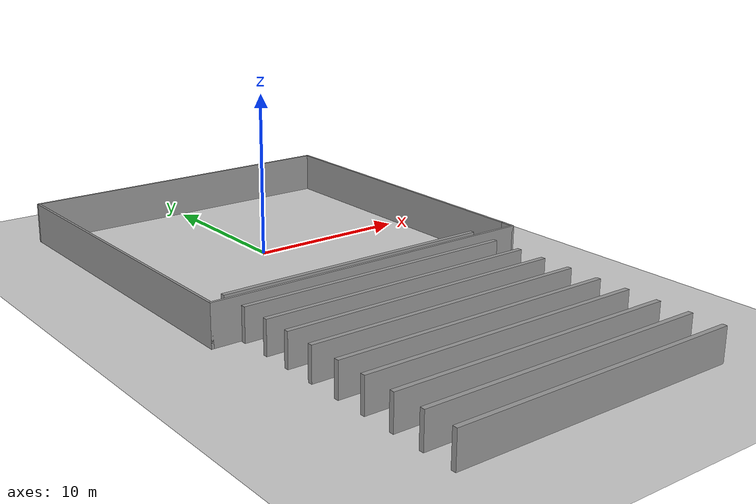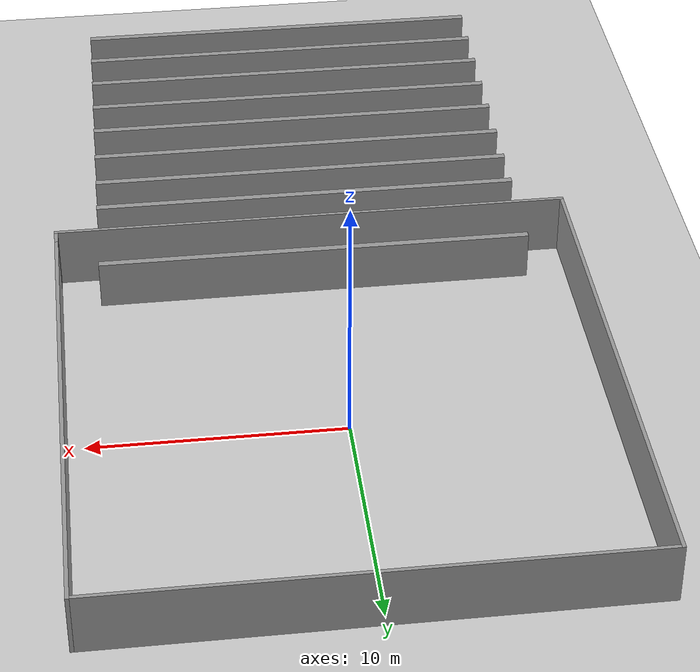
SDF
<sdf version="1.7">
 <world name="default">
  <light name="sun" type="directional">
   <pose>0 0 10 0 -0 0</pose>
   <diffuse>0.8 0.8 0.8 1</diffuse>
   <specular>0.2 0.2 0.2 1</specular>
   <attenuation>
    <range>1000</range>
    <constant>0.9</constant>
    <linear>0.01</linear>
    <quadratic>0.001</quadratic>
   </attenuation>
   <direction>-0.5 0.1 -0.9</direction>
   <spot><inner_angle>0</inner_angle><outer_angle>0</outer_angle><falloff>0</falloff></spot>
  </light>
  <model name="ground_plane">
   <static>1</static>
   <link name="link">
    <collision name="collision">
     <geometry><plane><normal>0 0 1</normal><size>100 100</size></plane></geometry>
     <surface><friction><ode><mu>100</mu><mu2>50</mu2></ode></friction></surface>
    </collision>
    <visual name="visual">
     <cast_shadows>0</cast_shadows>
     <geometry><plane><normal>0 0 1</normal><size>100 100</size></plane></geometry>
     <material>
      <script><uri>file://media/materials/scripts/gazebo.material</uri><name>Gazebo/Grey</name></script>
     </material>
    </visual>
   </link>
  </model>
  <gravity>0 0 -9.8</gravity>
  <magnetic_field>6e-06 2.3e-05 -4.2e-05</magnetic_field>
  <atmosphere type="adiabatic"/>
  <physics type="ode">
   <max_step_size>0.001</max_step_size>
   <real_time_factor>1</real_time_factor>
   <real_time_update_rate>1000</real_time_update_rate>
  </physics>
  <scene><ambient>0.4 0.4 0.4 1</ambient><background>0.7 0.7 0.7 1</background><shadows>1</shadows></scene>
  <spherical_coordinates>
   <surface_model>EARTH_WGS84</surface_model>
   <latitude_deg>0</latitude_deg>
   <longitude_deg>0</longitude_deg>
   <elevation>0</elevation>
   <heading_deg>0</heading_deg>
  </spherical_coordinates>
  <model name="plantaTermica">
   <link name="Wall_0_clone_clone">
    <pose>44.3326 37.2873 0 0 0 -1.5701</pose>
    <inertial>
     <inertia><ixx>0</ixx><ixy>0</ixy><ixz>0</ixz><iyy>0</iyy><iyz>0</iyz><izz>0</izz></inertia>
     <mass>0</mass>
    </inertial>
    <visual name="Wall_0_Visual">
     <pose>0 0 1 0 -0 0</pose>
     <geometry><box><size>0.28982 17.5231 2.00001</size></box></geometry>
     <material>
      <script><uri>file://media/materials/scripts/gazebo.material</uri><name>Gazebo/Grey</name></script>
      <ambient>1 1 1 1</ambient>
      <shader type="pixel"/>
     </material>
     <meta><layer>0</layer></meta>
    </visual>
    <collision name="Wall_0_Collision">
     <pose>0 0 1 0 -0 0</pose>
     <geometry><box><size>0.28982 17.5231 2.00001</size></box></geometry>
     <surface>
      <friction>
       <ode><mu>1</mu><mu2>1</mu2><fdir1>0 0 0</fdir1><slip1>0</slip1><slip2>0</slip2></ode>
       <torsional>
        <coefficient>1</coefficient>
        <patch_radius>0</patch_radius>
        <surface_radius>0</surface_radius>
        <use_patch_radius>1</use_patch_radius>
        <ode><slip>0</slip></ode>
       </torsional>
      </friction>
      <bounce><restitution_coefficient>0</restitution_coefficient><threshold>1e+06</threshold></bounce>
      <contact>
       <collide_without_contact>0</collide_without_contact>
       <collide_without_contact_bitmask>1</collide_without_contact_bitmask>
       <collide_bitmask>1</collide_bitmask>
       <ode>
        <soft_cfm>0</soft_cfm>
        <soft_erp>0.2</soft_erp>
        <kp>1e+13</kp>
        <kd>1</kd>
        <max_vel>0.01</max_vel>
        <min_depth>0</min_depth>
       </ode>
       <bullet>
        <split_impulse>1</split_impulse>
        <split_impulse_penetration_threshold>-0.01</split_impulse_penetration_threshold>
        <soft_cfm>0</soft_cfm>
        <soft_erp>0.2</soft_erp>
        <kp>1e+13</kp>
        <kd>1</kd>
       </bullet>
      </contact>
     </surface>
    </collision>
   </link>
   <link name="Wall_0_clone_clone_clone_0">
    <pose>44.134 19.3309 0 0 0 -1.5701</pose>
    <inertial>
     <inertia><ixx>0</ixx><ixy>0</ixy><ixz>0</ixz><iyy>0</iyy><iyz>0</iyz><izz>0</izz></inertia>
     <mass>0</mass>
    </inertial>
    <visual name="Wall_0_Visual">
     <pose>0 0 1 0 -0 0</pose>
     <geometry><box><size>0.28982 17.5231 2.00001</size></box></geometry>
     <material>
      <script><uri>file://media/materials/scripts/gazebo.material</uri><name>Gazebo/Grey</name></script>
      <ambient>1 1 1 1</ambient>
      <shader type="pixel"/>
     </material>
     <meta><layer>0</layer></meta>
    </visual>
    <collision name="Wall_0_Collision">
     <pose>0 0 1 0 -0 0</pose>
     <geometry><box><size>0.28982 17.5231 2.00001</size></box></geometry>
     <surface>
      <friction>
       <ode><mu>1</mu><mu2>1</mu2><fdir1>0 0 0</fdir1><slip1>0</slip1><slip2>0</slip2></ode>
       <torsional>
        <coefficient>1</coefficient>
        <patch_radius>0</patch_radius>
        <surface_radius>0</surface_radius>
        <use_patch_radius>1</use_patch_radius>
        <ode><slip>0</slip></ode>
       </torsional>
      </friction>
      <bounce><restitution_coefficient>0</restitution_coefficient><threshold>1e+06</threshold></bounce>
      <contact>
       <collide_without_contact>0</collide_without_contact>
       <collide_without_contact_bitmask>1</collide_without_contact_bitmask>
       <collide_bitmask>1</collide_bitmask>
       <ode>
        <soft_cfm>0</soft_cfm>
        <soft_erp>0.2</soft_erp>
        <kp>1e+13</kp>
        <kd>1</kd>
        <max_vel>0.01</max_vel>
        <min_depth>0</min_depth>
       </ode>
       <bullet>
        <split_impulse>1</split_impulse>
        <split_impulse_penetration_threshold>-0.01</split_impulse_penetration_threshold>
        <soft_cfm>0</soft_cfm>
        <soft_erp>0.2</soft_erp>
        <kp>1e+13</kp>
        <kd>1</kd>
       </bullet>
      </contact>
     </surface>
    </collision>
   </link>
   <link name="Wall_0_clone_clone_clone_1">
    <pose>44.1561 21.3337 0 0 0 -1.5701</pose>
    <inertial>
     <inertia><ixx>0</ixx><ixy>0</ixy><ixz>0</ixz><iyy>0</iyy><iyz>0</iyz><izz>0</izz></inertia>
     <mass>0</mass>
    </inertial>
    <visual name="Wall_0_Visual">
     <pose>0 0 1 0 -0 0</pose>
     <geometry><box><size>0.28982 17.5231 2.00001</size></box></geometry>
     <material>
      <script><uri>file://media/materials/scripts/gazebo.material</uri><name>Gazebo/Grey</name></script>
      <ambient>1 1 1 1</ambient>
      <shader type="pixel"/>
     </material>
     <meta><layer>0</layer></meta>
    </visual>
    <collision name="Wall_0_Collision">
     <pose>0 0 1 0 -0 0</pose>
     <geometry><box><size>0.28982 17.5231 2.00001</size></box></geometry>
     <surface>
      <friction>
       <ode><mu>1</mu><mu2>1</mu2><fdir1>0 0 0</fdir1><slip1>0</slip1><slip2>0</slip2></ode>
       <torsional>
        <coefficient>1</coefficient>
        <patch_radius>0</patch_radius>
        <surface_radius>0</surface_radius>
        <use_patch_radius>1</use_patch_radius>
        <ode><slip>0</slip></ode>
       </torsional>
      </friction>
      <bounce><restitution_coefficient>0</restitution_coefficient><threshold>1e+06</threshold></bounce>
      <contact>
       <collide_without_contact>0</collide_without_contact>
       <collide_without_contact_bitmask>1</collide_without_contact_bitmask>
       <collide_bitmask>1</collide_bitmask>
       <ode>
        <soft_cfm>0</soft_cfm>
        <soft_erp>0.2</soft_erp>
        <kp>1e+13</kp>
        <kd>1</kd>
        <max_vel>0.01</max_vel>
        <min_depth>0</min_depth>
       </ode>
       <bullet>
        <split_impulse>1</split_impulse>
        <split_impulse_penetration_threshold>-0.01</split_impulse_penetration_threshold>
        <soft_cfm>0</soft_cfm>
        <soft_erp>0.2</soft_erp>
        <kp>1e+13</kp>
        <kd>1</kd>
       </bullet>
      </contact>
     </surface>
    </collision>
   </link>
   <link name="Wall_0_clone_clone_clone_2">
    <pose>44.1782 23.3261 0 0 0 -1.5701</pose>
    <inertial>
     <inertia><ixx>0</ixx><ixy>0</ixy><ixz>0</ixz><iyy>0</iyy><iyz>0</iyz><izz>0</izz></inertia>
     <mass>0</mass>
    </inertial>
    <visual name="Wall_0_Visual">
     <pose>0 0 1 0 -0 0</pose>
     <geometry><box><size>0.28982 17.5231 2.00001</size></box></geometry>
     <material>
      <script><uri>file://media/materials/scripts/gazebo.material</uri><name>Gazebo/Grey</name></script>
      <ambient>1 1 1 1</ambient>
      <shader type="pixel"/>
     </material>
     <meta><layer>0</layer></meta>
    </visual>
    <collision name="Wall_0_Collision">
     <pose>0 0 1 0 -0 0</pose>
     <geometry><box><size>0.28982 17.5231 2.00001</size></box></geometry>
     <surface>
      <friction>
       <ode><mu>1</mu><mu2>1</mu2><fdir1>0 0 0</fdir1><slip1>0</slip1><slip2>0</slip2></ode>
       <torsional>
        <coefficient>1</coefficient>
        <patch_radius>0</patch_radius>
        <surface_radius>0</surface_radius>
        <use_patch_radius>1</use_patch_radius>
        <ode><slip>0</slip></ode>
       </torsional>
      </friction>
      <bounce><restitution_coefficient>0</restitution_coefficient><threshold>1e+06</threshold></bounce>
      <contact>
       <collide_without_contact>0</collide_without_contact>
       <collide_without_contact_bitmask>1</collide_without_contact_bitmask>
       <collide_bitmask>1</collide_bitmask>
       <ode>
        <soft_cfm>0</soft_cfm>
        <soft_erp>0.2</soft_erp>
        <kp>1e+13</kp>
        <kd>1</kd>
        <max_vel>0.01</max_vel>
        <min_depth>0</min_depth>
       </ode>
       <bullet>
        <split_impulse>1</split_impulse>
        <split_impulse_penetration_threshold>-0.01</split_impulse_penetration_threshold>
        <soft_cfm>0</soft_cfm>
        <soft_erp>0.2</soft_erp>
        <kp>1e+13</kp>
        <kd>1</kd>
       </bullet>
      </contact>
     </surface>
    </collision>
   </link>
   <link name="Wall_0_clone_clone_clone_3">
    <pose>44.2007 25.3651 0 0 0 -1.5701</pose>
    <inertial>
     <inertia><ixx>0</ixx><ixy>0</ixy><ixz>0</ixz><iyy>0</iyy><iyz>0</iyz><izz>0</izz></inertia>
     <mass>0</mass>
    </inertial>
    <visual name="Wall_0_Visual">
     <pose>0 0 1 0 -0 0</pose>
     <geometry><box><size>0.28982 17.5231 2.00001</size></box></geometry>
     <material>
      <script><uri>file://media/materials/scripts/gazebo.material</uri><name>Gazebo/Grey</name></script>
      <ambient>1 1 1 1</ambient>
      <shader type="pixel"/>
     </material>
     <meta><layer>0</layer></meta>
    </visual>
    <collision name="Wall_0_Collision">
     <pose>0 0 1 0 -0 0</pose>
     <geometry><box><size>0.28982 17.5231 2.00001</size></box></geometry>
     <surface>
      <friction>
       <ode><mu>1</mu><mu2>1</mu2><fdir1>0 0 0</fdir1><slip1>0</slip1><slip2>0</slip2></ode>
       <torsional>
        <coefficient>1</coefficient>
        <patch_radius>0</patch_radius>
        <surface_radius>0</surface_radius>
        <use_patch_radius>1</use_patch_radius>
        <ode><slip>0</slip></ode>
       </torsional>
      </friction>
      <bounce><restitution_coefficient>0</restitution_coefficient><threshold>1e+06</threshold></bounce>
      <contact>
       <collide_without_contact>0</collide_without_contact>
       <collide_without_contact_bitmask>1</collide_without_contact_bitmask>
       <collide_bitmask>1</collide_bitmask>
       <ode>
        <soft_cfm>0</soft_cfm>
        <soft_erp>0.2</soft_erp>
        <kp>1e+13</kp>
        <kd>1</kd>
        <max_vel>0.01</max_vel>
        <min_depth>0</min_depth>
       </ode>
       <bullet>
        <split_impulse>1</split_impulse>
        <split_impulse_penetration_threshold>-0.01</split_impulse_penetration_threshold>
        <soft_cfm>0</soft_cfm>
        <soft_erp>0.2</soft_erp>
        <kp>1e+13</kp>
        <kd>1</kd>
       </bullet>
      </contact>
     </surface>
    </collision>
   </link>
   <link name="Wall_0_clone_clone_clone_4">
    <pose>44.2223 27.3195 0 0 0 -1.5701</pose>
    <inertial>
     <inertia><ixx>0</ixx><ixy>0</ixy><ixz>0</ixz><iyy>0</iyy><iyz>0</iyz><izz>0</izz></inertia>
     <mass>0</mass>
    </inertial>
    <visual name="Wall_0_Visual">
     <pose>0 0 1 0 -0 0</pose>
     <geometry><box><size>0.28982 17.5231 2.00001</size></box></geometry>
     <material>
      <script><uri>file://media/materials/scripts/gazebo.material</uri><name>Gazebo/Grey</name></script>
      <ambient>1 1 1 1</ambient>
      <shader type="pixel"/>
     </material>
     <meta><layer>0</layer></meta>
    </visual>
    <collision name="Wall_0_Collision">
     <pose>0 0 1 0 -0 0</pose>
     <geometry><box><size>0.28982 17.5231 2.00001</size></box></geometry>
     <surface>
      <friction>
       <ode><mu>1</mu><mu2>1</mu2><fdir1>0 0 0</fdir1><slip1>0</slip1><slip2>0</slip2></ode>
       <torsional>
        <coefficient>1</coefficient>
        <patch_radius>0</patch_radius>
        <surface_radius>0</surface_radius>
        <use_patch_radius>1</use_patch_radius>
        <ode><slip>0</slip></ode>
       </torsional>
      </friction>
      <bounce><restitution_coefficient>0</restitution_coefficient><threshold>1e+06</threshold></bounce>
      <contact>
       <collide_without_contact>0</collide_without_contact>
       <collide_without_contact_bitmask>1</collide_without_contact_bitmask>
       <collide_bitmask>1</collide_bitmask>
       <ode>
        <soft_cfm>0</soft_cfm>
        <soft_erp>0.2</soft_erp>
        <kp>1e+13</kp>
        <kd>1</kd>
        <max_vel>0.01</max_vel>
        <min_depth>0</min_depth>
       </ode>
       <bullet>
        <split_impulse>1</split_impulse>
        <split_impulse_penetration_threshold>-0.01</split_impulse_penetration_threshold>
        <soft_cfm>0</soft_cfm>
        <soft_erp>0.2</soft_erp>
        <kp>1e+13</kp>
        <kd>1</kd>
       </bullet>
      </contact>
     </surface>
    </collision>
   </link>
   <link name="Wall_0_clone_clone_clone_5">
    <pose>44.2454 29.4054 0 0 0 -1.5701</pose>
    <inertial>
     <inertia><ixx>0</ixx><ixy>0</ixy><ixz>0</ixz><iyy>0</iyy><iyz>0</iyz><izz>0</izz></inertia>
     <mass>0</mass>
    </inertial>
    <visual name="Wall_0_Visual">
     <pose>0 0 1 0 -0 0</pose>
     <geometry><box><size>0.28982 17.5231 2.00001</size></box></geometry>
     <material>
      <script><uri>file://media/materials/scripts/gazebo.material</uri><name>Gazebo/Grey</name></script>
      <ambient>1 1 1 1</ambient>
      <shader type="pixel"/>
     </material>
     <meta><layer>0</layer></meta>
    </visual>
    <collision name="Wall_0_Collision">
     <pose>0 0 1 0 -0 0</pose>
     <geometry><box><size>0.28982 17.5231 2.00001</size></box></geometry>
     <surface>
      <friction>
       <ode><mu>1</mu><mu2>1</mu2><fdir1>0 0 0</fdir1><slip1>0</slip1><slip2>0</slip2></ode>
       <torsional>
        <coefficient>1</coefficient>
        <patch_radius>0</patch_radius>
        <surface_radius>0</surface_radius>
        <use_patch_radius>1</use_patch_radius>
        <ode><slip>0</slip></ode>
       </torsional>
      </friction>
      <bounce><restitution_coefficient>0</restitution_coefficient><threshold>1e+06</threshold></bounce>
      <contact>
       <collide_without_contact>0</collide_without_contact>
       <collide_without_contact_bitmask>1</collide_without_contact_bitmask>
       <collide_bitmask>1</collide_bitmask>
       <ode>
        <soft_cfm>0</soft_cfm>
        <soft_erp>0.2</soft_erp>
        <kp>1e+13</kp>
        <kd>1</kd>
        <max_vel>0.01</max_vel>
        <min_depth>0</min_depth>
       </ode>
       <bullet>
        <split_impulse>1</split_impulse>
        <split_impulse_penetration_threshold>-0.01</split_impulse_penetration_threshold>
        <soft_cfm>0</soft_cfm>
        <soft_erp>0.2</soft_erp>
        <kp>1e+13</kp>
        <kd>1</kd>
       </bullet>
      </contact>
     </surface>
    </collision>
   </link>
   <link name="Wall_0_clone_clone_clone_6">
    <pose>44.2675 31.4009 0 0 0 -1.5701</pose>
    <inertial>
     <inertia><ixx>0</ixx><ixy>0</ixy><ixz>0</ixz><iyy>0</iyy><iyz>0</iyz><izz>0</izz></inertia>
     <mass>0</mass>
    </inertial>
    <visual name="Wall_0_Visual">
     <pose>0 0 1 0 -0 0</pose>
     <geometry><box><size>0.28982 17.5231 2.00001</size></box></geometry>
     <material>
      <script><uri>file://media/materials/scripts/gazebo.material</uri><name>Gazebo/Grey</name></script>
      <ambient>1 1 1 1</ambient>
      <shader type="pixel"/>
     </material>
     <meta><layer>0</layer></meta>
    </visual>
    <collision name="Wall_0_Collision">
     <pose>0 0 1 0 -0 0</pose>
     <geometry><box><size>0.28982 17.5231 2.00001</size></box></geometry>
     <surface>
      <friction>
       <ode><mu>1</mu><mu2>1</mu2><fdir1>0 0 0</fdir1><slip1>0</slip1><slip2>0</slip2></ode>
       <torsional>
        <coefficient>1</coefficient>
        <patch_radius>0</patch_radius>
        <surface_radius>0</surface_radius>
        <use_patch_radius>1</use_patch_radius>
        <ode><slip>0</slip></ode>
       </torsional>
      </friction>
      <bounce><restitution_coefficient>0</restitution_coefficient><threshold>1e+06</threshold></bounce>
      <contact>
       <collide_without_contact>0</collide_without_contact>
       <collide_without_contact_bitmask>1</collide_without_contact_bitmask>
       <collide_bitmask>1</collide_bitmask>
       <ode>
        <soft_cfm>0</soft_cfm>
        <soft_erp>0.2</soft_erp>
        <kp>1e+13</kp>
        <kd>1</kd>
        <max_vel>0.01</max_vel>
        <min_depth>0</min_depth>
       </ode>
       <bullet>
        <split_impulse>1</split_impulse>
        <split_impulse_penetration_threshold>-0.01</split_impulse_penetration_threshold>
        <soft_cfm>0</soft_cfm>
        <soft_erp>0.2</soft_erp>
        <kp>1e+13</kp>
        <kd>1</kd>
       </bullet>
      </contact>
     </surface>
    </collision>
   </link>
   <link name="Wall_0_clone_clone_clone_7">
    <pose>44.2881 33.2679 0 0 0 -1.5701</pose>
    <inertial>
     <inertia><ixx>0</ixx><ixy>0</ixy><ixz>0</ixz><iyy>0</iyy><iyz>0</iyz><izz>0</izz></inertia>
     <mass>0</mass>
    </inertial>
    <visual name="Wall_0_Visual">
     <pose>0 0 1 0 -0 0</pose>
     <geometry><box><size>0.28982 17.5231 2.00001</size></box></geometry>
     <material>
      <script><uri>file://media/materials/scripts/gazebo.material</uri><name>Gazebo/Grey</name></script>
      <ambient>1 1 1 1</ambient>
      <shader type="pixel"/>
     </material>
     <meta><layer>0</layer></meta>
    </visual>
    <collision name="Wall_0_Collision">
     <pose>0 0 1 0 -0 0</pose>
     <geometry><box><size>0.28982 17.5231 2.00001</size></box></geometry>
     <surface>
      <friction>
       <ode><mu>1</mu><mu2>1</mu2><fdir1>0 0 0</fdir1><slip1>0</slip1><slip2>0</slip2></ode>
       <torsional>
        <coefficient>1</coefficient>
        <patch_radius>0</patch_radius>
        <surface_radius>0</surface_radius>
        <use_patch_radius>1</use_patch_radius>
        <ode><slip>0</slip></ode>
       </torsional>
      </friction>
      <bounce><restitution_coefficient>0</restitution_coefficient><threshold>1e+06</threshold></bounce>
      <contact>
       <collide_without_contact>0</collide_without_contact>
       <collide_without_contact_bitmask>1</collide_without_contact_bitmask>
       <collide_bitmask>1</collide_bitmask>
       <ode>
        <soft_cfm>0</soft_cfm>
        <soft_erp>0.2</soft_erp>
        <kp>1e+13</kp>
        <kd>1</kd>
        <max_vel>0.01</max_vel>
        <min_depth>0</min_depth>
       </ode>
       <bullet>
        <split_impulse>1</split_impulse>
        <split_impulse_penetration_threshold>-0.01</split_impulse_penetration_threshold>
        <soft_cfm>0</soft_cfm>
        <soft_erp>0.2</soft_erp>
        <kp>1e+13</kp>
        <kd>1</kd>
       </bullet>
      </contact>
     </surface>
    </collision>
   </link>
   <link name="Wall_0_clone_clone_clone_8">
    <pose>44.3104 35.2837 0 0 0 -1.5701</pose>
    <inertial>
     <inertia><ixx>0</ixx><ixy>0</ixy><ixz>0</ixz><iyy>0</iyy><iyz>0</iyz><izz>0</izz></inertia>
     <mass>0</mass>
    </inertial>
    <visual name="Wall_0_Visual">
     <pose>0 0 1 0 -0 0</pose>
     <geometry><box><size>0.28982 17.5231 2.00001</size></box></geometry>
     <material>
      <script><uri>file://media/materials/scripts/gazebo.material</uri><name>Gazebo/Grey</name></script>
      <ambient>1 1 1 1</ambient>
      <shader type="pixel"/>
     </material>
     <meta><layer>0</layer></meta>
    </visual>
    <collision name="Wall_0_Collision">
     <pose>0 0 1 0 -0 0</pose>
     <geometry><box><size>0.28982 17.5231 2.00001</size></box></geometry>
     <surface>
      <friction>
       <ode><mu>1</mu><mu2>1</mu2><fdir1>0 0 0</fdir1><slip1>0</slip1><slip2>0</slip2></ode>
       <torsional>
        <coefficient>1</coefficient>
        <patch_radius>0</patch_radius>
        <surface_radius>0</surface_radius>
        <use_patch_radius>1</use_patch_radius>
        <ode><slip>0</slip></ode>
       </torsional>
      </friction>
      <bounce><restitution_coefficient>0</restitution_coefficient><threshold>1e+06</threshold></bounce>
      <contact>
       <collide_without_contact>0</collide_without_contact>
       <collide_without_contact_bitmask>1</collide_without_contact_bitmask>
       <collide_bitmask>1</collide_bitmask>
       <ode>
        <soft_cfm>0</soft_cfm>
        <soft_erp>0.2</soft_erp>
        <kp>1e+13</kp>
        <kd>1</kd>
        <max_vel>0.01</max_vel>
        <min_depth>0</min_depth>
       </ode>
       <bullet>
        <split_impulse>1</split_impulse>
        <split_impulse_penetration_threshold>-0.01</split_impulse_penetration_threshold>
        <soft_cfm>0</soft_cfm>
        <soft_erp>0.2</soft_erp>
        <kp>1e+13</kp>
        <kd>1</kd>
       </bullet>
      </contact>
     </surface>
    </collision>
   </link>
   <static>1</static>
   <pose>-44.0229 -46.3025 0 0 -0 0</pose>
  </model>
  <model name="Untitled">
   <pose>0.278452 -0.15727 0 0 -0 0</pose>
   <link name="Wall_14">
    <collision name="Wall_14_Collision">
     <geometry><box><size>20.5 0.15 2.5</size></box></geometry>
     <pose>0 0 1.25 0 -0 0</pose>
    </collision>
    <visual name="Wall_14_Visual">
     <pose>0 0 1.25 0 -0 0</pose>
     <geometry><box><size>20.5 0.15 2.5</size></box></geometry>
     <material>
      <script><uri>file://media/materials/scripts/gazebo.material</uri><name>Gazebo/Grey</name></script>
      <ambient>1 1 1 1</ambient>
     </material>
     <meta><layer>0</layer></meta>
    </visual>
    <pose>10.425 0.375 0 0 -0 1.5708</pose>
   </link>
   <link name="Wall_15">
    <collision name="Wall_15_Collision">
     <geometry><box><size>21 0.15 2.5</size></box></geometry>
     <pose>0 0 1.25 0 -0 0</pose>
    </collision>
    <visual name="Wall_15_Visual">
     <pose>0 0 1.25 0 -0 0</pose>
     <geometry><box><size>21 0.15 2.5</size></box></geometry>
     <material>
      <script><uri>file://media/materials/scripts/gazebo.material</uri><name>Gazebo/Grey</name></script>
      <ambient>1 1 1 1</ambient>
     </material>
     <meta><layer>0</layer></meta>
    </visual>
    <pose>0 10.55 0 0 -0 3.14159</pose>
   </link>
   <link name="Wall_16">
    <collision name="Wall_16_Collision">
     <geometry><box><size>21.25 0.15 2.5</size></box></geometry>
     <pose>0 0 1.25 0 -0 0</pose>
    </collision>
    <visual name="Wall_16_Visual">
     <pose>0 0 1.25 0 -0 0</pose>
     <geometry><box><size>21.25 0.15 2.5</size></box></geometry>
     <material>
      <script><uri>file://media/materials/scripts/gazebo.material</uri><name>Gazebo/Grey</name></script>
      <ambient>1 1 1 1</ambient>
     </material>
     <meta><layer>0</layer></meta>
    </visual>
    <pose>-10.425 -0 0 0 -0 -1.5708</pose>
   </link>
   <link name="Wall_17">
    <collision name="Wall_17_Collision">
     <geometry><box><size>21 0.15 2.5</size></box></geometry>
     <pose>0 0 1.25 0 -0 0</pose>
    </collision>
    <visual name="Wall_17_Visual">
     <pose>0 0 1.25 0 -0 0</pose>
     <geometry><box><size>21 0.15 2.5</size></box></geometry>
     <material>
      <script><uri>file://media/materials/scripts/gazebo.material</uri><name>Gazebo/Grey</name></script>
      <ambient>1 1 1 1</ambient>
     </material>
     <meta><layer>0</layer></meta>
    </visual>
    <pose>0 -10.55 0 0 -0 0</pose>
   </link>
   <link name="Wall_18">
    <collision name="Wall_18_Collision">
     <geometry><box><size>0.9 0.15 2.5</size></box></geometry>
     <pose>0 0 1.25 0 -0 0</pose>
    </collision>
    <visual name="Wall_18_Visual">
     <pose>0 0 1.25 0 -0 0</pose>
     <geometry><box><size>0.9 0.15 2.5</size></box></geometry>
     <material>
      <script><uri>file://media/materials/scripts/gazebo.material</uri><name>Gazebo/Grey</name></script>
      <ambient>1 1 1 1</ambient>
     </material>
     <meta><layer>0</layer></meta>
    </visual>
    <pose>10.425 -10.175 0 0 -0 1.5708</pose>
   </link>
   <static>1</static>
  </model>
 </world>
</sdf>
